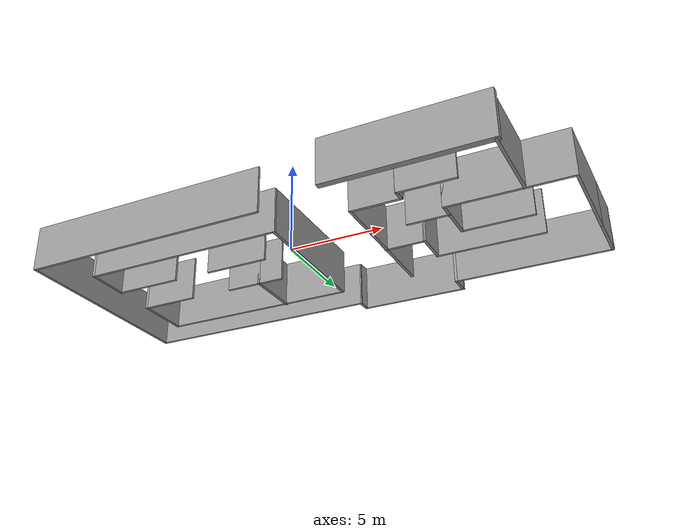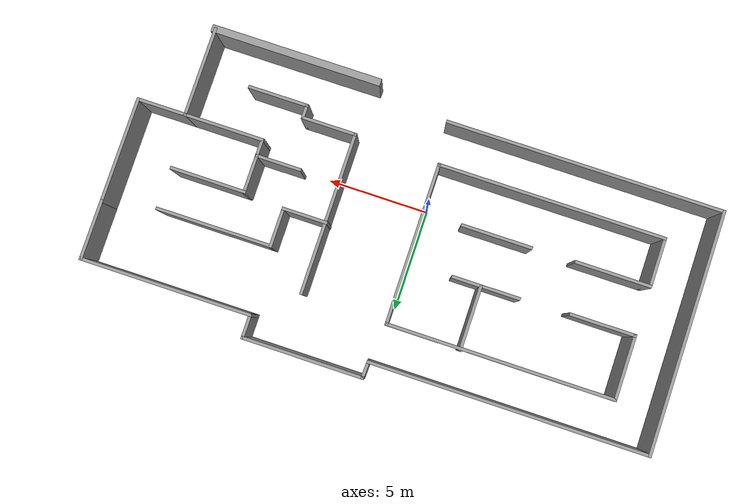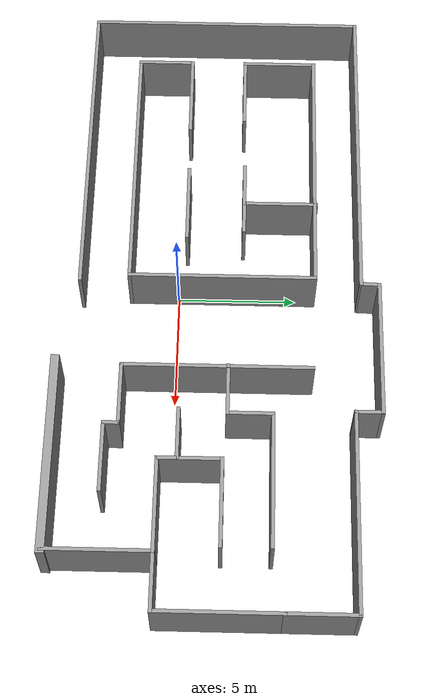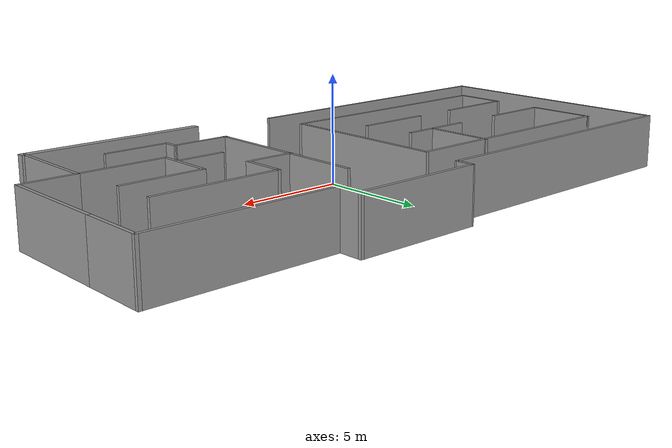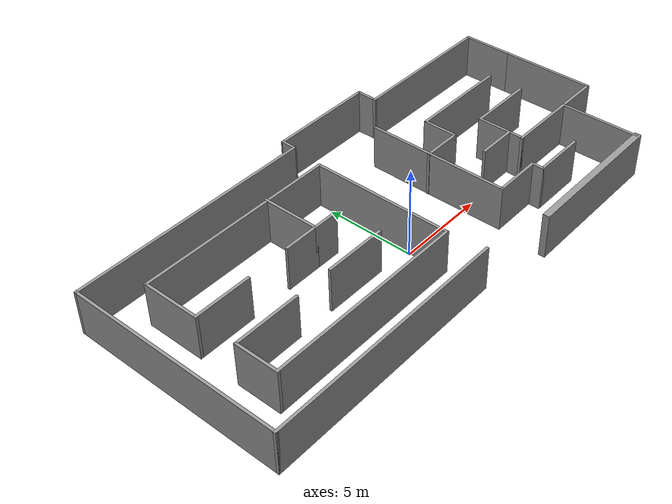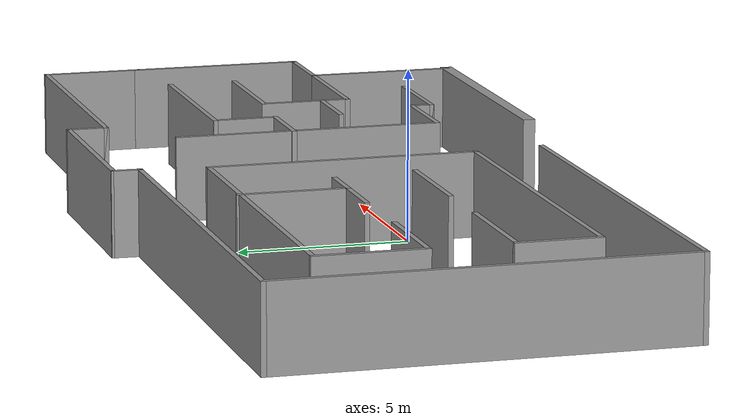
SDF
<?xml version='1.0'?>
<sdf version='1.6'>
  <model name='walls1'>
    <pose frame=''>0.671679 1.74386 0 0 -0 0</pose>
    <link name='Wall_10'>
      <collision name='Wall_10_Collision'>
        <geometry>
          <box>
            <size>11.25 0.15 2.5</size>
          </box>
        </geometry>
        <pose frame=''>0 0 1.25 0 -0 0</pose>
      </collision>
      <visual name='Wall_10_Visual'>
        <pose frame=''>0 0 1.25 0 -0 0</pose>
        <geometry>
          <box>
            <size>11.25 0.15 2.5</size>
          </box>
        </geometry>
        <material>
          <script>
            <uri>file://media/materials/scripts/gazebo.material</uri>
            <name>Gazebo/Grey</name>
          </script>
          <ambient>1 1 1 1</ambient>
        </material>
        <meta>
          <layer>0</layer>
        </meta>
      </visual>
      <pose frame=''>-6.10536 4.05849 0 0 -0 0</pose>
    </link>
    <link name='Wall_12'>
      <collision name='Wall_12_Collision'>
        <geometry>
          <box>
            <size>3.25 0.15 2.5</size>
          </box>
        </geometry>
        <pose frame=''>0 0 1.25 0 -0 0</pose>
      </collision>
      <visual name='Wall_12_Visual'>
        <pose frame=''>0 0 1.25 0 -0 0</pose>
        <geometry>
          <box>
            <size>3.25 0.15 2.5</size>
          </box>
        </geometry>
        <material>
          <script>
            <uri>file://media/materials/scripts/gazebo.material</uri>
            <name>Gazebo/Grey</name>
          </script>
          <ambient>1 1 1 1</ambient>
        </material>
        <meta>
          <layer>0</layer>
        </meta>
      </visual>
      <pose frame=''>-11.6554 2.50849 0 0 -0 -1.5708</pose>
    </link>
    <link name='Wall_13'>
      <collision name='Wall_13_Collision'>
        <geometry>
          <box>
            <size>3.25 0.15 2.5</size>
          </box>
        </geometry>
        <pose frame=''>0 0 1.25 0 -0 0</pose>
      </collision>
      <visual name='Wall_13_Visual'>
        <pose frame=''>0 0 1.25 0 -0 0</pose>
        <geometry>
          <box>
            <size>3.25 0.15 2.5</size>
          </box>
        </geometry>
        <material>
          <script>
            <uri>file://media/materials/scripts/gazebo.material</uri>
            <name>Gazebo/Grey</name>
          </script>
          <ambient>1 1 1 1</ambient>
        </material>
        <meta>
          <layer>0</layer>
        </meta>
      </visual>
      <pose frame=''>-10.1054 0.958494 0 0 -0 0</pose>
    </link>
    <link name='Wall_15'>
      <collision name='Wall_15_Collision'>
        <geometry>
          <box>
            <size>2 0.15 2.5</size>
          </box>
        </geometry>
        <pose frame=''>0 0 1.25 0 -0 0</pose>
      </collision>
      <visual name='Wall_15_Visual'>
        <pose frame=''>0 0 1.25 0 -0 0</pose>
        <geometry>
          <box>
            <size>2 0.15 2.5</size>
          </box>
        </geometry>
        <material>
          <script>
            <uri>file://media/materials/scripts/gazebo.material</uri>
            <name>Gazebo/Grey</name>
          </script>
          <ambient>1 1 1 1</ambient>
        </material>
        <meta>
          <layer>0</layer>
        </meta>
      </visual>
      <pose frame=''>-5.10312 1.01674 0 0 -0 0</pose>
    </link>
    <link name='Wall_16'>
      <collision name='Wall_16_Collision'>
        <geometry>
          <box>
            <size>3.25 0.15 2.5</size>
          </box>
        </geometry>
        <pose frame=''>0 0 1.25 0 -0 0</pose>
      </collision>
      <visual name='Wall_16_Visual'>
        <pose frame=''>0 0 1.25 0 -0 0</pose>
        <geometry>
          <box>
            <size>3.25 0.15 2.5</size>
          </box>
        </geometry>
        <material>
          <script>
            <uri>file://media/materials/scripts/gazebo.material</uri>
            <name>Gazebo/Grey</name>
          </script>
          <ambient>1 1 1 1</ambient>
        </material>
        <meta>
          <layer>0</layer>
        </meta>
      </visual>
      <pose frame=''>-4.17812 2.56674 0 0 -0 1.5708</pose>
    </link>
    <link name='Wall_18'>
      <collision name='Wall_18_Collision'>
        <geometry>
          <box>
            <size>1.5 0.15 2.5</size>
          </box>
        </geometry>
        <pose frame=''>0 0 1.25 0 -0 0</pose>
      </collision>
      <visual name='Wall_18_Visual'>
        <pose frame=''>0 0 1.25 0 -0 0</pose>
        <geometry>
          <box>
            <size>1.5 0.15 2.5</size>
          </box>
        </geometry>
        <material>
          <script>
            <uri>file://media/materials/scripts/gazebo.material</uri>
            <name>Gazebo/Grey</name>
          </script>
          <ambient>1 1 1 1</ambient>
        </material>
        <meta>
          <layer>0</layer>
        </meta>
      </visual>
      <pose frame=''>-3.50312 1.01674 0 0 -0 0</pose>
    </link>
    <link name='Wall_20'>
      <collision name='Wall_20_Collision'>
        <geometry>
          <box>
            <size>8 0.15 2.5</size>
          </box>
        </geometry>
        <pose frame=''>0 0 1.25 0 -0 0</pose>
      </collision>
      <visual name='Wall_20_Visual'>
        <pose frame=''>0 0 1.25 0 -0 0</pose>
        <geometry>
          <box>
            <size>8 0.15 2.5</size>
          </box>
        </geometry>
        <material>
          <script>
            <uri>file://media/materials/scripts/gazebo.material</uri>
            <name>Gazebo/Grey</name>
          </script>
          <ambient>1 1 1 1</ambient>
        </material>
        <meta>
          <layer>0</layer>
        </meta>
      </visual>
      <pose frame=''>-0.555357 0.133494 0 0 -0 -1.5708</pose>
    </link>
    <link name='Wall_21'>
      <collision name='Wall_21_Collision'>
        <geometry>
          <box>
            <size>11.25 0.15 2.5</size>
          </box>
        </geometry>
        <pose frame=''>0 0 1.25 0 -0 0</pose>
      </collision>
      <visual name='Wall_21_Visual'>
        <pose frame=''>0 0 1.25 0 -0 0</pose>
        <geometry>
          <box>
            <size>11.25 0.15 2.5</size>
          </box>
        </geometry>
        <material>
          <script>
            <uri>file://media/materials/scripts/gazebo.material</uri>
            <name>Gazebo/Grey</name>
          </script>
          <ambient>1 1 1 1</ambient>
        </material>
        <meta>
          <layer>0</layer>
        </meta>
      </visual>
      <pose frame=''>-6.10536 -3.79151 0 0 -0 3.14159</pose>
    </link>
    <link name='Wall_22'>
      <collision name='Wall_22_Collision'>
        <geometry>
          <box>
            <size>2.5 0.15 2.5</size>
          </box>
        </geometry>
        <pose frame=''>0 0 1.25 0 -0 0</pose>
      </collision>
      <visual name='Wall_22_Visual'>
        <pose frame=''>0 0 1.25 0 -0 0</pose>
        <geometry>
          <box>
            <size>2.5 0.15 2.5</size>
          </box>
        </geometry>
        <material>
          <script>
            <uri>file://media/materials/scripts/gazebo.material</uri>
            <name>Gazebo/Grey</name>
          </script>
          <ambient>1 1 1 1</ambient>
        </material>
        <meta>
          <layer>0</layer>
        </meta>
      </visual>
      <pose frame=''>-11.6554 -2.61651 0 0 -0 1.5708</pose>
    </link>
    <link name='Wall_23'>
      <collision name='Wall_23_Collision'>
        <geometry>
          <box>
            <size>3.75 0.15 2.5</size>
          </box>
        </geometry>
        <pose frame=''>0 0 1.25 0 -0 0</pose>
      </collision>
      <visual name='Wall_23_Visual'>
        <pose frame=''>0 0 1.25 0 -0 0</pose>
        <geometry>
          <box>
            <size>3.75 0.15 2.5</size>
          </box>
        </geometry>
        <material>
          <script>
            <uri>file://media/materials/scripts/gazebo.material</uri>
            <name>Gazebo/Grey</name>
          </script>
          <ambient>1 1 1 1</ambient>
        </material>
        <meta>
          <layer>0</layer>
        </meta>
      </visual>
      <pose frame=''>-9.85536 -1.44151 0 0 -0 0</pose>
    </link>
    <link name='Wall_25'>
      <collision name='Wall_25_Collision'>
        <geometry>
          <box>
            <size>3.5 0.15 2.5</size>
          </box>
        </geometry>
        <pose frame=''>0 0 1.25 0 -0 0</pose>
      </collision>
      <visual name='Wall_25_Visual'>
        <pose frame=''>0 0 1.25 0 -0 0</pose>
        <geometry>
          <box>
            <size>3.5 0.15 2.5</size>
          </box>
        </geometry>
        <material>
          <script>
            <uri>file://media/materials/scripts/gazebo.material</uri>
            <name>Gazebo/Grey</name>
          </script>
          <ambient>1 1 1 1</ambient>
        </material>
        <meta>
          <layer>0</layer>
        </meta>
      </visual>
      <pose frame=''>-4.17061 -1.41666 0 0 -0 0</pose>
    </link>
    <link name='Wall_27'>
      <collision name='Wall_27_Collision'>
        <geometry>
          <box>
            <size>8 0.15 2.5</size>
          </box>
        </geometry>
        <pose frame=''>0 0 1.25 0 -0 0</pose>
      </collision>
      <visual name='Wall_27_Visual'>
        <pose frame=''>0 0 1.25 0 -0 0</pose>
        <geometry>
          <box>
            <size>8 0.15 2.5</size>
          </box>
        </geometry>
        <material>
          <script>
            <uri>file://media/materials/scripts/gazebo.material</uri>
            <name>Gazebo/Grey</name>
          </script>
          <ambient>1 1 1 1</ambient>
        </material>
        <meta>
          <layer>0</layer>
        </meta>
      </visual>
      <pose frame=''>3.64465 0.011824 0 0 -0 -1.5708</pose>
    </link>
    <link name='Wall_29'>
      <collision name='Wall_29_Collision'>
        <geometry>
          <box>
            <size>8.45982 0.36 2.5</size>
          </box>
        </geometry>
        <pose frame=''>0 0 1.25 0 -0 0</pose>
      </collision>
      <visual name='Wall_29_Visual'>
        <pose frame=''>0 0 1.25 0 -0 0</pose>
        <geometry>
          <box>
            <size>8.45982 0.36 2.5</size>
          </box>
        </geometry>
        <material>
          <script>
            <uri>file://media/materials/scripts/gazebo.material</uri>
            <name>Gazebo/Grey</name>
          </script>
          <ambient>1 1 1 1</ambient>
        </material>
        <meta>
          <layer>0</layer>
        </meta>
      </visual>
      <pose frame=''>7.51232 -6.64886 0 0 -0 0</pose>
    </link>
    <link name='Wall_30'>
      <collision name='Wall_30_Collision'>
        <geometry>
          <box>
            <size>4.5 0.15 2.5</size>
          </box>
        </geometry>
        <pose frame=''>0 0 1.25 0 -0 0</pose>
      </collision>
      <visual name='Wall_30_Visual'>
        <pose frame=''>0 0 1.25 0 -0 0</pose>
        <geometry>
          <box>
            <size>4.5 0.15 2.5</size>
          </box>
        </geometry>
        <material>
          <script>
            <uri>file://media/materials/scripts/gazebo.material</uri>
            <name>Gazebo/Grey</name>
          </script>
          <ambient>1 1 1 1</ambient>
        </material>
        <meta>
          <layer>0</layer>
        </meta>
      </visual>
      <pose frame=''>11.5622 -4.47366 0 0 -0 1.57084</pose>
    </link>
    <link name='Wall_31'>
      <collision name='Wall_31_Collision'>
        <geometry>
          <box>
            <size>4 0.15 2.5</size>
          </box>
        </geometry>
        <pose frame=''>0 0 1.25 0 -0 0</pose>
      </collision>
      <visual name='Wall_31_Visual'>
        <pose frame=''>0 0 1.25 0 -0 0</pose>
        <geometry>
          <box>
            <size>4 0.15 2.5</size>
          </box>
        </geometry>
        <material>
          <script>
            <uri>file://media/materials/scripts/gazebo.material</uri>
            <name>Gazebo/Grey</name>
          </script>
          <ambient>1 1 1 1</ambient>
        </material>
        <meta>
          <layer>0</layer>
        </meta>
      </visual>
      <pose frame=''>9.63714 -2.29847 0 0 -0 3.14159</pose>
    </link>
    <link name='Wall_32'>
      <collision name='Wall_32_Collision'>
        <geometry>
          <box>
            <size>2.75 0.15 2.5</size>
          </box>
        </geometry>
        <pose frame=''>0 0 1.25 0 -0 0</pose>
      </collision>
      <visual name='Wall_32_Visual'>
        <pose frame=''>0 0 1.25 0 -0 0</pose>
        <geometry>
          <box>
            <size>2.75 0.15 2.5</size>
          </box>
        </geometry>
        <material>
          <script>
            <uri>file://media/materials/scripts/gazebo.material</uri>
            <name>Gazebo/Grey</name>
          </script>
          <ambient>1 1 1 1</ambient>
        </material>
        <meta>
          <layer>0</layer>
        </meta>
      </visual>
      <pose frame=''>7.71214 -0.998466 0 0 -0 1.5708</pose>
    </link>
    <link name='Wall_33'>
      <collision name='Wall_33_Collision'>
        <geometry>
          <box>
            <size>3.75 0.15 2.5</size>
          </box>
        </geometry>
        <pose frame=''>0 0 1.25 0 -0 0</pose>
      </collision>
      <visual name='Wall_33_Visual'>
        <pose frame=''>0 0 1.25 0 -0 0</pose>
        <geometry>
          <box>
            <size>3.75 0.15 2.5</size>
          </box>
        </geometry>
        <material>
          <script>
            <uri>file://media/materials/scripts/gazebo.material</uri>
            <name>Gazebo/Grey</name>
          </script>
          <ambient>1 1 1 1</ambient>
        </material>
        <meta>
          <layer>0</layer>
        </meta>
      </visual>
      <pose frame=''>9.51214 0.301534 0 0 -0 0</pose>
    </link>
    <link name='Wall_35'>
      <collision name='Wall_35_Collision'>
        <geometry>
          <box>
            <size>2.5 0.15 2.5</size>
          </box>
        </geometry>
        <pose frame=''>0 0 1.25 0 -0 0</pose>
      </collision>
      <visual name='Wall_35_Visual'>
        <pose frame=''>0 0 1.25 0 -0 0</pose>
        <geometry>
          <box>
            <size>2.5 0.15 2.5</size>
          </box>
        </geometry>
        <material>
          <script>
            <uri>file://media/materials/scripts/gazebo.material</uri>
            <name>Gazebo/Grey</name>
          </script>
          <ambient>1 1 1 1</ambient>
        </material>
        <meta>
          <layer>0</layer>
        </meta>
      </visual>
      <pose frame=''>12.7371 -2.29847 0 0 -0 0</pose>
    </link>
    <link name='Wall_36'>
      <collision name='Wall_36_Collision'>
        <geometry>
          <box>
            <size>5.25 0.15 2.5</size>
          </box>
        </geometry>
        <pose frame=''>0 0 1.25 0 -0 0</pose>
      </collision>
      <visual name='Wall_36_Visual'>
        <pose frame=''>0 0 1.25 0 -0 0</pose>
        <geometry>
          <box>
            <size>5.25 0.15 2.5</size>
          </box>
        </geometry>
        <material>
          <script>
            <uri>file://media/materials/scripts/gazebo.material</uri>
            <name>Gazebo/Grey</name>
          </script>
          <ambient>1 1 1 1</ambient>
        </material>
        <meta>
          <layer>0</layer>
        </meta>
      </visual>
      <pose frame=''>13.9121 0.251534 0 0 -0 1.5708</pose>
    </link>
    <link name='Wall_38'>
      <collision name='Wall_38_Collision'>
        <geometry>
          <box>
            <size>2.75 0.15 2.5</size>
          </box>
        </geometry>
        <pose frame=''>0 0 1.25 0 -0 0</pose>
      </collision>
      <visual name='Wall_38_Visual'>
        <pose frame=''>0 0 1.25 0 -0 0</pose>
        <geometry>
          <box>
            <size>2.75 0.15 2.5</size>
          </box>
        </geometry>
        <material>
          <script>
            <uri>file://media/materials/scripts/gazebo.material</uri>
            <name>Gazebo/Grey</name>
          </script>
          <ambient>1 1 1 1</ambient>
        </material>
        <meta>
          <layer>0</layer>
        </meta>
      </visual>
      <pose frame=''>4.94465 -3.91318 0 0 -0 0</pose>
    </link>
    <link name='Wall_39'>
      <collision name='Wall_39_Collision'>
        <geometry>
          <box>
            <size>0.75 0.15 2.5</size>
          </box>
        </geometry>
        <pose frame=''>0 0 1.25 0 -0 0</pose>
      </collision>
      <visual name='Wall_39_Visual'>
        <pose frame=''>0 0 1.25 0 -0 0</pose>
        <geometry>
          <box>
            <size>0.75 0.15 2.5</size>
          </box>
        </geometry>
        <material>
          <script>
            <uri>file://media/materials/scripts/gazebo.material</uri>
            <name>Gazebo/Grey</name>
          </script>
          <ambient>1 1 1 1</ambient>
        </material>
        <meta>
          <layer>0</layer>
        </meta>
      </visual>
      <pose frame=''>6.24465 -4.21318 0 0 -0 -1.5708</pose>
    </link>
    <link name='Wall_40'>
      <collision name='Wall_40_Collision'>
        <geometry>
          <box>
            <size>3 0.15 2.5</size>
          </box>
        </geometry>
        <pose frame=''>0 0 1.25 0 -0 0</pose>
      </collision>
      <visual name='Wall_40_Visual'>
        <pose frame=''>0 0 1.25 0 -0 0</pose>
        <geometry>
          <box>
            <size>3 0.15 2.5</size>
          </box>
        </geometry>
        <material>
          <script>
            <uri>file://media/materials/scripts/gazebo.material</uri>
            <name>Gazebo/Grey</name>
          </script>
          <ambient>1 1 1 1</ambient>
        </material>
        <meta>
          <layer>0</layer>
        </meta>
      </visual>
      <pose frame=''>7.66965 -4.51318 0 0 -0 0</pose>
    </link>
    <link name='Wall_42'>
      <collision name='Wall_42_Collision'>
        <geometry>
          <box>
            <size>2.25 0.15 2.5</size>
          </box>
        </geometry>
        <pose frame=''>0 0 1.25 0 -0 0</pose>
      </collision>
      <visual name='Wall_42_Visual'>
        <pose frame=''>0 0 1.25 0 -0 0</pose>
        <geometry>
          <box>
            <size>2.25 0.15 2.5</size>
          </box>
        </geometry>
        <material>
          <script>
            <uri>file://media/materials/scripts/gazebo.material</uri>
            <name>Gazebo/Grey</name>
          </script>
          <ambient>1 1 1 1</ambient>
        </material>
        <meta>
          <layer>0</layer>
        </meta>
      </visual>
      <pose frame=''>6.64017 -1.50791 0 0 -0 3.14159</pose>
    </link>
    <link name='Wall_44'>
      <collision name='Wall_44_Collision'>
        <geometry>
          <box>
            <size>2.25 0.15 2.5</size>
          </box>
        </geometry>
        <pose frame=''>0 0 1.25 0 -0 0</pose>
      </collision>
      <visual name='Wall_44_Visual'>
        <pose frame=''>0 0 1.25 0 -0 0</pose>
        <geometry>
          <box>
            <size>2.25 0.15 2.5</size>
          </box>
        </geometry>
        <material>
          <script>
            <uri>file://media/materials/scripts/gazebo.material</uri>
            <name>Gazebo/Grey</name>
          </script>
          <ambient>1 1 1 1</ambient>
        </material>
        <meta>
          <layer>0</layer>
        </meta>
      </visual>
      <pose frame=''>4.66423 0.469229 0 0 -0 0</pose>
    </link>
    <link name='Wall_45'>
      <collision name='Wall_45_Collision'>
        <geometry>
          <box>
            <size>2 0.15 2.5</size>
          </box>
        </geometry>
        <pose frame=''>0 0 1.25 0 -0 0</pose>
      </collision>
      <visual name='Wall_45_Visual'>
        <pose frame=''>0 0 1.25 0 -0 0</pose>
        <geometry>
          <box>
            <size>2 0.15 2.5</size>
          </box>
        </geometry>
        <material>
          <script>
            <uri>file://media/materials/scripts/gazebo.material</uri>
            <name>Gazebo/Grey</name>
          </script>
          <ambient>1 1 1 1</ambient>
        </material>
        <meta>
          <layer>0</layer>
        </meta>
      </visual>
      <pose frame=''>5.71423 1.39423 0 0 -0 1.5708</pose>
    </link>
    <link name='Wall_46'>
      <collision name='Wall_46_Collision'>
        <geometry>
          <box>
            <size>5.75 0.15 2.5</size>
          </box>
        </geometry>
        <pose frame=''>0 0 1.25 0 -0 0</pose>
      </collision>
      <visual name='Wall_46_Visual'>
        <pose frame=''>0 0 1.25 0 -0 0</pose>
        <geometry>
          <box>
            <size>5.75 0.15 2.5</size>
          </box>
        </geometry>
        <material>
          <script>
            <uri>file://media/materials/scripts/gazebo.material</uri>
            <name>Gazebo/Grey</name>
          </script>
          <ambient>1 1 1 1</ambient>
        </material>
        <meta>
          <layer>0</layer>
        </meta>
      </visual>
      <pose frame=''>8.51423 2.31923 0 0 -0 0</pose>
    </link>
    <link name='Wall_48'>
      <collision name='Wall_48_Collision'>
        <geometry>
          <box>
            <size>3 0.15 2.5</size>
          </box>
        </geometry>
        <pose frame=''>0 0 1.25 0 -0 0</pose>
      </collision>
      <visual name='Wall_48_Visual'>
        <pose frame=''>0 0 1.25 0 -0 0</pose>
        <geometry>
          <box>
            <size>3 0.15 2.5</size>
          </box>
        </geometry>
        <material>
          <script>
            <uri>file://media/materials/scripts/gazebo.material</uri>
            <name>Gazebo/Grey</name>
          </script>
          <ambient>1 1 1 1</ambient>
        </material>
        <meta>
          <layer>0</layer>
        </meta>
      </visual>
      <pose frame=''>13.9121 4.22653 0 0 -0 1.5708</pose>
    </link>
    <link name='Wall_50'>
      <collision name='Wall_50_Collision'>
        <geometry>
          <box>
            <size>8.5 0.15 2.5</size>
          </box>
        </geometry>
        <pose frame=''>0 0 1.25 0 -0 0</pose>
      </collision>
      <visual name='Wall_50_Visual'>
        <pose frame=''>0 0 1.25 0 -0 0</pose>
        <geometry>
          <box>
            <size>8.5 0.15 2.5</size>
          </box>
        </geometry>
        <material>
          <script>
            <uri>file://media/materials/scripts/gazebo.material</uri>
            <name>Gazebo/Grey</name>
          </script>
          <ambient>1 1 1 1</ambient>
        </material>
        <meta>
          <layer>0</layer>
        </meta>
      </visual>
      <pose frame=''>9.73714 5.65153 0 0 -0 3.14159</pose>
    </link>
    <link name='Wall_51'>
      <collision name='Wall_51_Collision'>
        <geometry>
          <box>
            <size>1.25 0.15 2.5</size>
          </box>
        </geometry>
        <pose frame=''>0 0 1.25 0 -0 0</pose>
      </collision>
      <visual name='Wall_51_Visual'>
        <pose frame=''>0 0 1.25 0 -0 0</pose>
        <geometry>
          <box>
            <size>1.25 0.15 2.5</size>
          </box>
        </geometry>
        <material>
          <script>
            <uri>file://media/materials/scripts/gazebo.material</uri>
            <name>Gazebo/Grey</name>
          </script>
          <ambient>1 1 1 1</ambient>
        </material>
        <meta>
          <layer>0</layer>
        </meta>
      </visual>
      <pose frame=''>5.56214 6.20153 0 0 -0 1.5708</pose>
    </link>
    <link name='Wall_52'>
      <collision name='Wall_52_Collision'>
        <geometry>
          <box>
            <size>6 0.15 2.5</size>
          </box>
        </geometry>
        <pose frame=''>0 0 1.25 0 -0 0</pose>
      </collision>
      <visual name='Wall_52_Visual'>
        <pose frame=''>0 0 1.25 0 -0 0</pose>
        <geometry>
          <box>
            <size>6 0.15 2.5</size>
          </box>
        </geometry>
        <material>
          <script>
            <uri>file://media/materials/scripts/gazebo.material</uri>
            <name>Gazebo/Grey</name>
          </script>
          <ambient>1 1 1 1</ambient>
        </material>
        <meta>
          <layer>0</layer>
        </meta>
      </visual>
      <pose frame=''>2.63714 6.75153 0 0 -0 3.14159</pose>
    </link>
    <link name='Wall_53'>
      <collision name='Wall_53_Collision'>
        <geometry>
          <box>
            <size>0.919227 0.15 2.5</size>
          </box>
        </geometry>
        <pose frame=''>0 0 1.25 0 -0 0</pose>
      </collision>
      <visual name='Wall_53_Visual'>
        <pose frame=''>0 0 1.25 0 -0 0</pose>
        <geometry>
          <box>
            <size>0.919227 0.15 2.5</size>
          </box>
        </geometry>
        <material>
          <script>
            <uri>file://media/materials/scripts/gazebo.material</uri>
            <name>Gazebo/Grey</name>
          </script>
          <ambient>1 1 1 1</ambient>
        </material>
        <meta>
          <layer>0</layer>
        </meta>
      </visual>
      <pose frame=''>-0.3 6.36711 0 0 -0 -1.60237</pose>
    </link>
    <link name='Wall_6'>
      <collision name='Wall_6_Collision'>
        <geometry>
          <box>
            <size>13.75 0.15 2.5</size>
          </box>
        </geometry>
        <pose frame=''>0 0 1.25 0 -0 0</pose>
      </collision>
      <visual name='Wall_6_Visual'>
        <pose frame=''>0 0 1.25 0 -0 0</pose>
        <geometry>
          <box>
            <size>13.75 0.15 2.5</size>
          </box>
        </geometry>
        <material>
          <script>
            <uri>file://media/materials/scripts/gazebo.material</uri>
            <name>Gazebo/Grey</name>
          </script>
          <ambient>1 1 1 1</ambient>
        </material>
        <meta>
          <layer>0</layer>
        </meta>
      </visual>
      <pose frame=''>-7.11214 5.98269 0 0 -0 3.14159</pose>
    </link>
    <link name='Wall_7'>
      <collision name='Wall_7_Collision'>
        <geometry>
          <box>
            <size>12 0.15 2.5</size>
          </box>
        </geometry>
        <pose frame=''>0 0 1.25 0 -0 0</pose>
      </collision>
      <visual name='Wall_7_Visual'>
        <pose frame=''>0 0 1.25 0 -0 0</pose>
        <geometry>
          <box>
            <size>12 0.15 2.5</size>
          </box>
        </geometry>
        <material>
          <script>
            <uri>file://media/materials/scripts/gazebo.material</uri>
            <name>Gazebo/Grey</name>
          </script>
          <ambient>1 1 1 1</ambient>
        </material>
        <meta>
          <layer>0</layer>
        </meta>
      </visual>
      <pose frame=''>-13.9121 0.057691 0 0 -0 -1.5708</pose>
    </link>
    <link name='Wall_8'>
      <collision name='Wall_8_Collision'>
        <geometry>
          <box>
            <size>13.75 0.15 2.5</size>
          </box>
        </geometry>
        <pose frame=''>0 0 1.25 0 -0 0</pose>
      </collision>
      <visual name='Wall_8_Visual'>
        <pose frame=''>0 0 1.25 0 -0 0</pose>
        <geometry>
          <box>
            <size>13.75 0.15 2.5</size>
          </box>
        </geometry>
        <material>
          <script>
            <uri>file://media/materials/scripts/gazebo.material</uri>
            <name>Gazebo/Grey</name>
          </script>
          <ambient>1 1 1 1</ambient>
        </material>
        <meta>
          <layer>0</layer>
        </meta>
      </visual>
      <pose frame=''>-7.11214 -5.86731 0 0 -0 0</pose>
    </link>
    <static>1</static>
  </model>
</sdf>
